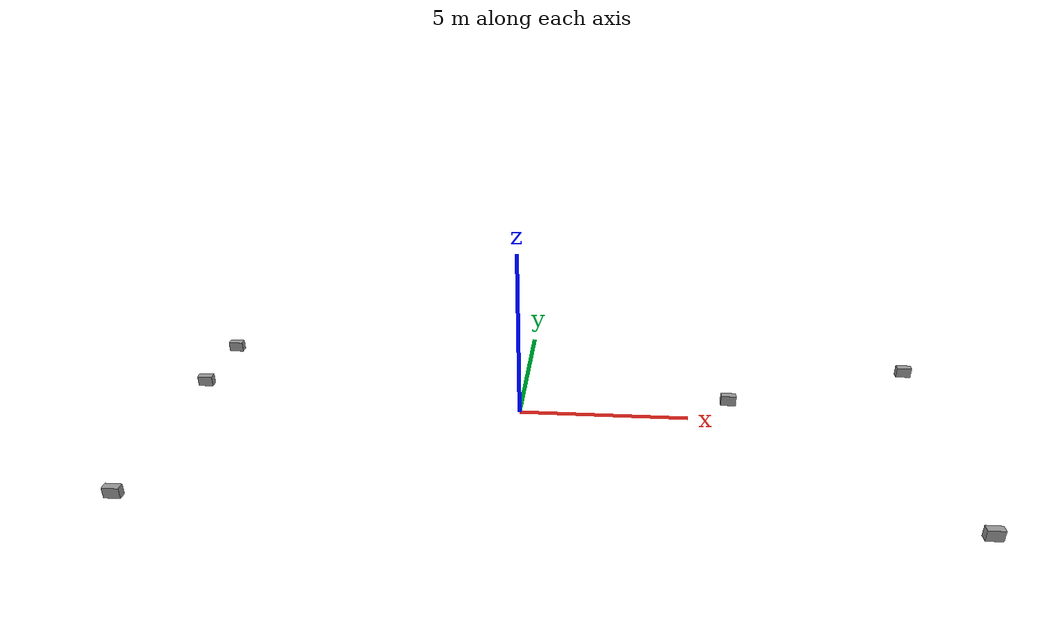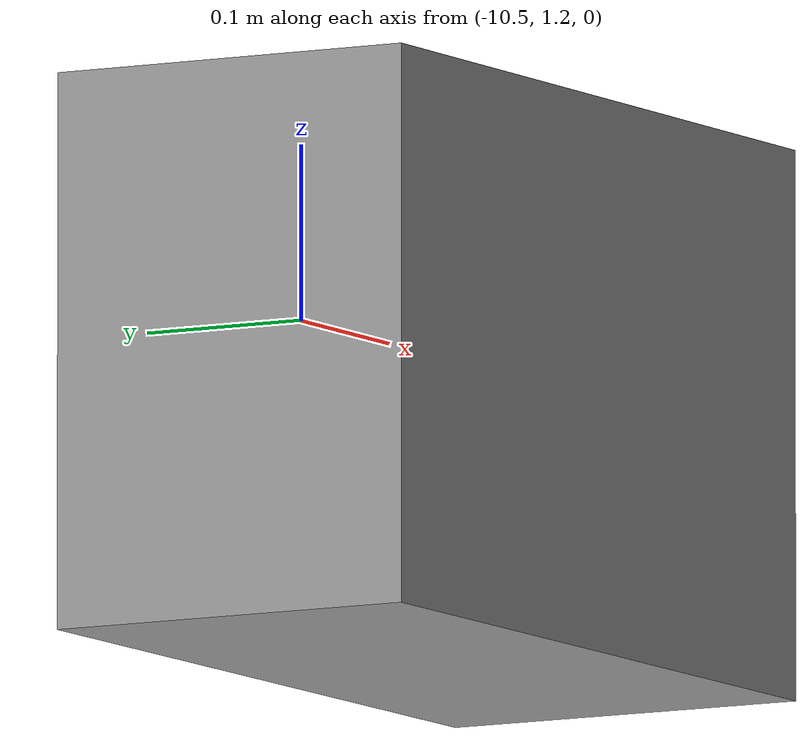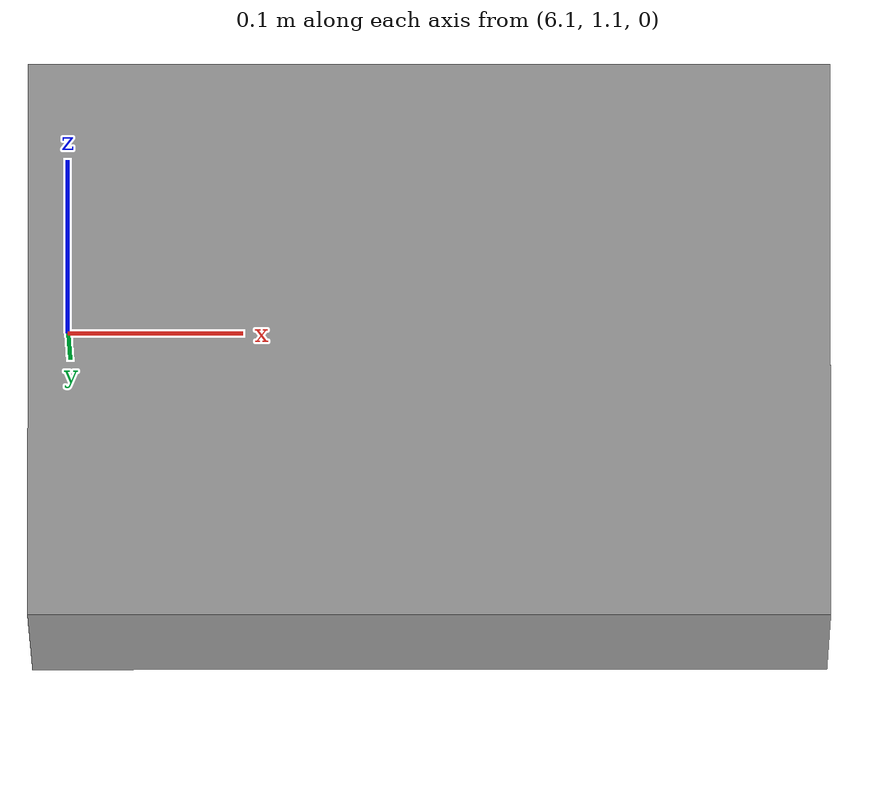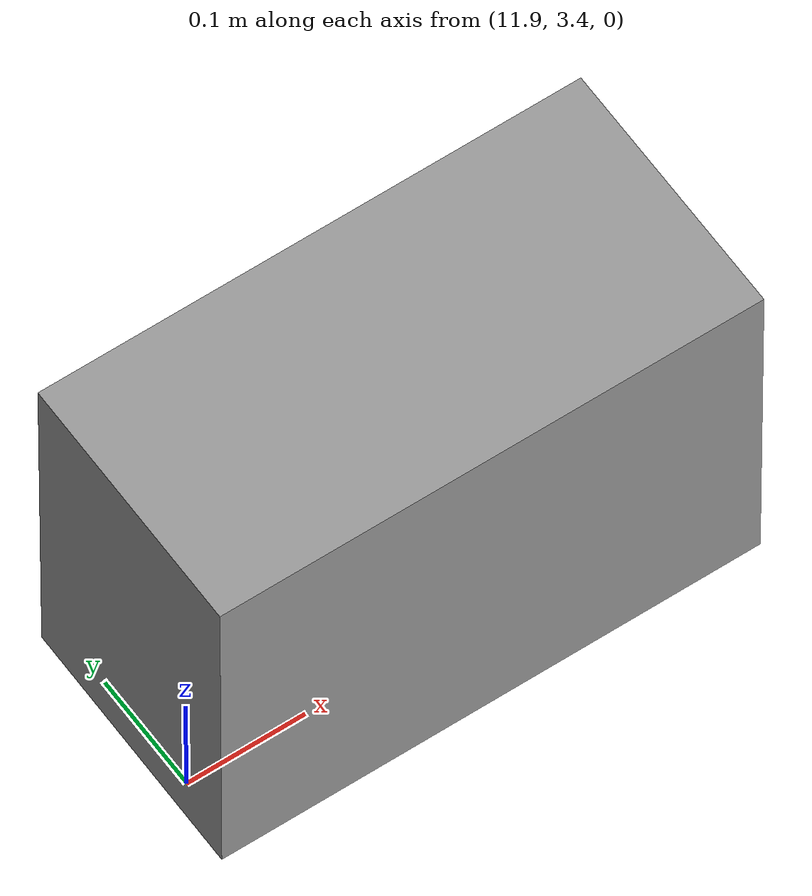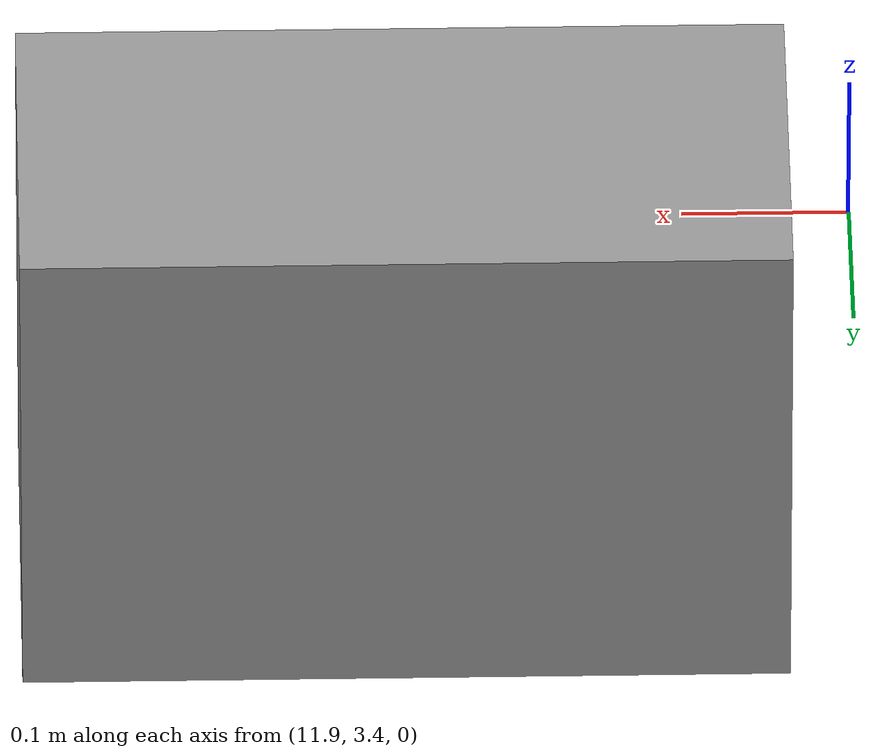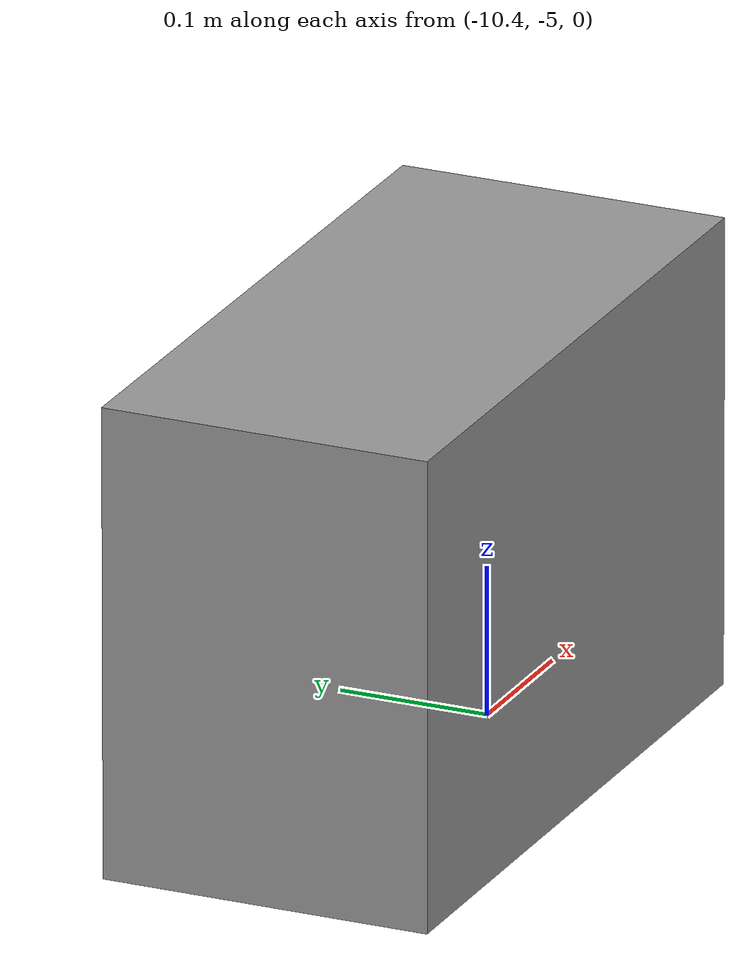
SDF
<?xml version='1.0'?>
<sdf version='1.7'>
  <model name='map'>
    <link name='link_0'>
      <inertial>
        <mass>0.0325764</mass>
        <inertia>
          <ixx>0.000410135</ixx>
          <ixy>0</ixy>
          <ixz>0</ixz>
          <iyy>0.00084638</iyy>
          <iyz>0</iyz>
          <izz>0.000706627</izz>
        </inertia>
        <pose>0 0 0 0 -0 0</pose>
      </inertial>
      <pose>12.1695 3.52814 0 0 -0 0</pose>
      <visual name='visual'>
        <pose>0 0 0 0 -0 0</pose>
        <geometry>
          <box>
            <size>0.458799 0.223159 0.318245</size>
          </box>
        </geometry>
        <material>
          <lighting>1</lighting>
          <script>
            <uri>file://media/materials/scripts/gazebo.material</uri>
            <name>Gazebo/Grey</name>
          </script>
          <shader type='pixel'/>
        </material>
        <transparency>0</transparency>
        <cast_shadows>1</cast_shadows>
      </visual>
      <collision name='collision'>
        <laser_retro>0</laser_retro>
        <max_contacts>10</max_contacts>
        <pose>0 0 0 0 -0 0</pose>
        <geometry>
          <box>
            <size>0.458799 0.223159 0.318245</size>
          </box>
        </geometry>
        <surface>
          <friction>
            <ode>
              <mu>1</mu>
              <mu2>1</mu2>
              <fdir1>0 0 0</fdir1>
              <slip1>0</slip1>
              <slip2>0</slip2>
            </ode>
            <torsional>
              <coefficient>1</coefficient>
              <patch_radius>0</patch_radius>
              <surface_radius>0</surface_radius>
              <use_patch_radius>1</use_patch_radius>
              <ode>
                <slip>0</slip>
              </ode>
            </torsional>
          </friction>
          <bounce>
            <restitution_coefficient>0</restitution_coefficient>
            <threshold>1e+06</threshold>
          </bounce>
          <contact>
            <collide_without_contact>0</collide_without_contact>
            <collide_without_contact_bitmask>1</collide_without_contact_bitmask>
            <collide_bitmask>1</collide_bitmask>
            <ode>
              <soft_cfm>0</soft_cfm>
              <soft_erp>0.2</soft_erp>
              <kp>1e+13</kp>
              <kd>1</kd>
              <max_vel>0.01</max_vel>
              <min_depth>0</min_depth>
            </ode>
            <bullet>
              <split_impulse>1</split_impulse>
              <split_impulse_penetration_threshold>-0.01</split_impulse_penetration_threshold>
              <soft_cfm>0</soft_cfm>
              <soft_erp>0.2</soft_erp>
              <kp>1e+13</kp>
              <kd>1</kd>
            </bullet>
          </contact>
        </surface>
      </collision>
    </link>
    <link name='link_0_clone'>
      <inertial>
        <mass>0.0325764</mass>
        <inertia>
          <ixx>0.000410135</ixx>
          <ixy>0</ixy>
          <ixz>0</ixz>
          <iyy>0.00084638</iyy>
          <iyz>0</iyz>
          <izz>0.000706627</izz>
        </inertia>
        <pose>0 0 0 0 -0 0</pose>
      </inertial>
      <pose>-10.2062 3.75552 -0 0 -0 0</pose>
      <visual name='visual'>
        <pose>0 0 0 0 -0 0</pose>
        <geometry>
          <box>
            <size>0.458799 0.223159 0.318245</size>
          </box>
        </geometry>
        <material>
          <lighting>1</lighting>
          <script>
            <uri>file://media/materials/scripts/gazebo.material</uri>
            <name>Gazebo/Grey</name>
          </script>
          <shader type='pixel'/>
        </material>
        <transparency>0</transparency>
        <cast_shadows>1</cast_shadows>
      </visual>
      <collision name='collision'>
        <laser_retro>0</laser_retro>
        <max_contacts>10</max_contacts>
        <pose>0 0 0 0 -0 0</pose>
        <geometry>
          <box>
            <size>0.458799 0.223159 0.318245</size>
          </box>
        </geometry>
        <surface>
          <friction>
            <ode>
              <mu>1</mu>
              <mu2>1</mu2>
              <fdir1>0 0 0</fdir1>
              <slip1>0</slip1>
              <slip2>0</slip2>
            </ode>
            <torsional>
              <coefficient>1</coefficient>
              <patch_radius>0</patch_radius>
              <surface_radius>0</surface_radius>
              <use_patch_radius>1</use_patch_radius>
              <ode>
                <slip>0</slip>
              </ode>
            </torsional>
          </friction>
          <bounce>
            <restitution_coefficient>0</restitution_coefficient>
            <threshold>1e+06</threshold>
          </bounce>
          <contact>
            <collide_without_contact>0</collide_without_contact>
            <collide_without_contact_bitmask>1</collide_without_contact_bitmask>
            <collide_bitmask>1</collide_bitmask>
            <ode>
              <soft_cfm>0</soft_cfm>
              <soft_erp>0.2</soft_erp>
              <kp>1e+13</kp>
              <kd>1</kd>
              <max_vel>0.01</max_vel>
              <min_depth>0</min_depth>
            </ode>
            <bullet>
              <split_impulse>1</split_impulse>
              <split_impulse_penetration_threshold>-0.01</split_impulse_penetration_threshold>
              <soft_cfm>0</soft_cfm>
              <soft_erp>0.2</soft_erp>
              <kp>1e+13</kp>
              <kd>1</kd>
            </bullet>
          </contact>
        </surface>
      </collision>
    </link>
    <link name='link_0_clone_0'>
      <inertial>
        <mass>0.0325764</mass>
        <inertia>
          <ixx>0.000410135</ixx>
          <ixy>0</ixy>
          <ixz>0</ixz>
          <iyy>0.00084638</iyy>
          <iyz>0</iyz>
          <izz>0.000706627</izz>
        </inertia>
        <pose>0 0 0 0 -0 0</pose>
      </inertial>
      <pose>-10.2383 1.26552 -0 0 -0 0</pose>
      <visual name='visual'>
        <pose>0 0 0 0 -0 0</pose>
        <geometry>
          <box>
            <size>0.458799 0.223159 0.318245</size>
          </box>
        </geometry>
        <material>
          <lighting>1</lighting>
          <script>
            <uri>file://media/materials/scripts/gazebo.material</uri>
            <name>Gazebo/Grey</name>
          </script>
          <shader type='pixel'/>
        </material>
        <transparency>0</transparency>
        <cast_shadows>1</cast_shadows>
      </visual>
      <collision name='collision'>
        <laser_retro>0</laser_retro>
        <max_contacts>10</max_contacts>
        <pose>0 0 0 0 -0 0</pose>
        <geometry>
          <box>
            <size>0.458799 0.223159 0.318245</size>
          </box>
        </geometry>
        <surface>
          <friction>
            <ode>
              <mu>1</mu>
              <mu2>1</mu2>
              <fdir1>0 0 0</fdir1>
              <slip1>0</slip1>
              <slip2>0</slip2>
            </ode>
            <torsional>
              <coefficient>1</coefficient>
              <patch_radius>0</patch_radius>
              <surface_radius>0</surface_radius>
              <use_patch_radius>1</use_patch_radius>
              <ode>
                <slip>0</slip>
              </ode>
            </torsional>
          </friction>
          <bounce>
            <restitution_coefficient>0</restitution_coefficient>
            <threshold>1e+06</threshold>
          </bounce>
          <contact>
            <collide_without_contact>0</collide_without_contact>
            <collide_without_contact_bitmask>1</collide_without_contact_bitmask>
            <collide_bitmask>1</collide_bitmask>
            <ode>
              <soft_cfm>0</soft_cfm>
              <soft_erp>0.2</soft_erp>
              <kp>1e+13</kp>
              <kd>1</kd>
              <max_vel>0.01</max_vel>
              <min_depth>0</min_depth>
            </ode>
            <bullet>
              <split_impulse>1</split_impulse>
              <split_impulse_penetration_threshold>-0.01</split_impulse_penetration_threshold>
              <soft_cfm>0</soft_cfm>
              <soft_erp>0.2</soft_erp>
              <kp>1e+13</kp>
              <kd>1</kd>
            </bullet>
          </contact>
        </surface>
      </collision>
    </link>
    <link name='link_0_clone_1'>
      <inertial>
        <mass>0.0325764</mass>
        <inertia>
          <ixx>0.000410135</ixx>
          <ixy>0</ixy>
          <ixz>0</ixz>
          <iyy>0.00084638</iyy>
          <iyz>0</iyz>
          <izz>0.000706627</izz>
        </inertia>
        <pose>0 0 0 0 -0 0</pose>
      </inertial>
      <pose>-10.1607 -4.84293 -0 0 -0 0</pose>
      <visual name='visual'>
        <pose>0 0 0 0 -0 0</pose>
        <geometry>
          <box>
            <size>0.458799 0.223159 0.318245</size>
          </box>
        </geometry>
        <material>
          <lighting>1</lighting>
          <script>
            <uri>file://media/materials/scripts/gazebo.material</uri>
            <name>Gazebo/Grey</name>
          </script>
          <shader type='pixel'/>
        </material>
        <transparency>0</transparency>
        <cast_shadows>1</cast_shadows>
      </visual>
      <collision name='collision'>
        <laser_retro>0</laser_retro>
        <max_contacts>10</max_contacts>
        <pose>0 0 0 0 -0 0</pose>
        <geometry>
          <box>
            <size>0.458799 0.223159 0.318245</size>
          </box>
        </geometry>
        <surface>
          <friction>
            <ode>
              <mu>1</mu>
              <mu2>1</mu2>
              <fdir1>0 0 0</fdir1>
              <slip1>0</slip1>
              <slip2>0</slip2>
            </ode>
            <torsional>
              <coefficient>1</coefficient>
              <patch_radius>0</patch_radius>
              <surface_radius>0</surface_radius>
              <use_patch_radius>1</use_patch_radius>
              <ode>
                <slip>0</slip>
              </ode>
            </torsional>
          </friction>
          <bounce>
            <restitution_coefficient>0</restitution_coefficient>
            <threshold>1e+06</threshold>
          </bounce>
          <contact>
            <collide_without_contact>0</collide_without_contact>
            <collide_without_contact_bitmask>1</collide_without_contact_bitmask>
            <collide_bitmask>1</collide_bitmask>
            <ode>
              <soft_cfm>0</soft_cfm>
              <soft_erp>0.2</soft_erp>
              <kp>1e+13</kp>
              <kd>1</kd>
              <max_vel>0.01</max_vel>
              <min_depth>0</min_depth>
            </ode>
            <bullet>
              <split_impulse>1</split_impulse>
              <split_impulse_penetration_threshold>-0.01</split_impulse_penetration_threshold>
              <soft_cfm>0</soft_cfm>
              <soft_erp>0.2</soft_erp>
              <kp>1e+13</kp>
              <kd>1</kd>
            </bullet>
          </contact>
        </surface>
      </collision>
    </link>
    <link name='link_0_clone_2'>
      <inertial>
        <mass>0.0325764</mass>
        <inertia>
          <ixx>0.000410135</ixx>
          <ixy>0</ixy>
          <ixz>0</ixz>
          <iyy>0.00084638</iyy>
          <iyz>0</iyz>
          <izz>0.000706627</izz>
        </inertia>
        <pose>0 0 0 0 -0 0</pose>
      </inertial>
      <pose>6.30606 1.23347 -0 0 -0 0</pose>
      <visual name='visual'>
        <pose>0 0 0 0 -0 0</pose>
        <geometry>
          <box>
            <size>0.458799 0.223159 0.318245</size>
          </box>
        </geometry>
        <material>
          <lighting>1</lighting>
          <script>
            <uri>file://media/materials/scripts/gazebo.material</uri>
            <name>Gazebo/Grey</name>
          </script>
          <shader type='pixel'/>
        </material>
        <transparency>0</transparency>
        <cast_shadows>1</cast_shadows>
      </visual>
      <collision name='collision'>
        <laser_retro>0</laser_retro>
        <max_contacts>10</max_contacts>
        <pose>0 0 0 0 -0 0</pose>
        <geometry>
          <box>
            <size>0.458799 0.223159 0.318245</size>
          </box>
        </geometry>
        <surface>
          <friction>
            <ode>
              <mu>1</mu>
              <mu2>1</mu2>
              <fdir1>0 0 0</fdir1>
              <slip1>0</slip1>
              <slip2>0</slip2>
            </ode>
            <torsional>
              <coefficient>1</coefficient>
              <patch_radius>0</patch_radius>
              <surface_radius>0</surface_radius>
              <use_patch_radius>1</use_patch_radius>
              <ode>
                <slip>0</slip>
              </ode>
            </torsional>
          </friction>
          <bounce>
            <restitution_coefficient>0</restitution_coefficient>
            <threshold>1e+06</threshold>
          </bounce>
          <contact>
            <collide_without_contact>0</collide_without_contact>
            <collide_without_contact_bitmask>1</collide_without_contact_bitmask>
            <collide_bitmask>1</collide_bitmask>
            <ode>
              <soft_cfm>0</soft_cfm>
              <soft_erp>0.2</soft_erp>
              <kp>1e+13</kp>
              <kd>1</kd>
              <max_vel>0.01</max_vel>
              <min_depth>0</min_depth>
            </ode>
            <bullet>
              <split_impulse>1</split_impulse>
              <split_impulse_penetration_threshold>-0.01</split_impulse_penetration_threshold>
              <soft_cfm>0</soft_cfm>
              <soft_erp>0.2</soft_erp>
              <kp>1e+13</kp>
              <kd>1</kd>
            </bullet>
          </contact>
        </surface>
      </collision>
    </link>
    <link name='link_0_clone_3'>
      <inertial>
        <mass>0.0325764</mass>
        <inertia>
          <ixx>0.000410135</ixx>
          <ixy>0</ixy>
          <ixz>0</ixz>
          <iyy>0.00084638</iyy>
          <iyz>0</iyz>
          <izz>0.000706627</izz>
        </inertia>
        <pose>0 0 0 0 -0 0</pose>
      </inertial>
      <pose>12.1295 -4.9397 -0 0 -0 0</pose>
      <visual name='visual'>
        <pose>0 0 0 0 -0 0</pose>
        <geometry>
          <box>
            <size>0.458799 0.223159 0.318245</size>
          </box>
        </geometry>
        <material>
          <lighting>1</lighting>
          <script>
            <uri>file://media/materials/scripts/gazebo.material</uri>
            <name>Gazebo/Grey</name>
          </script>
          <shader type='pixel'/>
        </material>
        <transparency>0</transparency>
        <cast_shadows>1</cast_shadows>
      </visual>
      <collision name='collision'>
        <laser_retro>0</laser_retro>
        <max_contacts>10</max_contacts>
        <pose>0 0 0 0 -0 0</pose>
        <geometry>
          <box>
            <size>0.458799 0.223159 0.318245</size>
          </box>
        </geometry>
        <surface>
          <friction>
            <ode>
              <mu>1</mu>
              <mu2>1</mu2>
              <fdir1>0 0 0</fdir1>
              <slip1>0</slip1>
              <slip2>0</slip2>
            </ode>
            <torsional>
              <coefficient>1</coefficient>
              <patch_radius>0</patch_radius>
              <surface_radius>0</surface_radius>
              <use_patch_radius>1</use_patch_radius>
              <ode>
                <slip>0</slip>
              </ode>
            </torsional>
          </friction>
          <bounce>
            <restitution_coefficient>0</restitution_coefficient>
            <threshold>1e+06</threshold>
          </bounce>
          <contact>
            <collide_without_contact>0</collide_without_contact>
            <collide_without_contact_bitmask>1</collide_without_contact_bitmask>
            <collide_bitmask>1</collide_bitmask>
            <ode>
              <soft_cfm>0</soft_cfm>
              <soft_erp>0.2</soft_erp>
              <kp>1e+13</kp>
              <kd>1</kd>
              <max_vel>0.01</max_vel>
              <min_depth>0</min_depth>
            </ode>
            <bullet>
              <split_impulse>1</split_impulse>
              <split_impulse_penetration_threshold>-0.01</split_impulse_penetration_threshold>
              <soft_cfm>0</soft_cfm>
              <soft_erp>0.2</soft_erp>
              <kp>1e+13</kp>
              <kd>1</kd>
            </bullet>
          </contact>
        </surface>
      </collision>
    </link>
    <static>0</static>
    <allow_auto_disable>1</allow_auto_disable>
    <plugin name='libgtec_uwb_plugin' filename='libgtec_tag_pos_publisher_plugin.so'>
      <update_rate>25</update_rate>
      <nlosSoftWallWidth>0.25</nlosSoftWallWidth>
      <tag_z_offset>1.5</tag_z_offset>
      <tag_link>tag_0</tag_link>
      <anchor_prefix>uwb_aher la suitenchor</anchor_prefix>
      <all_los>false</all_los>
      <tag_id>0</tag_id>
    </plugin>
  </model>
</sdf>
